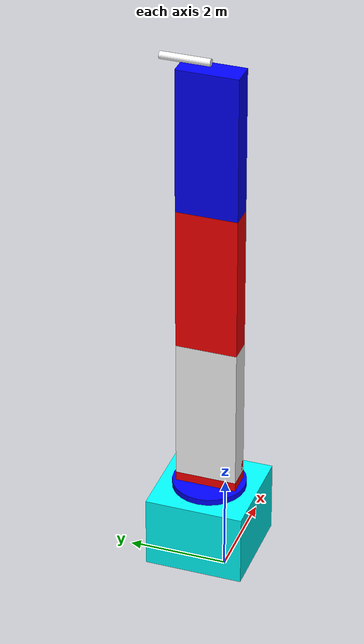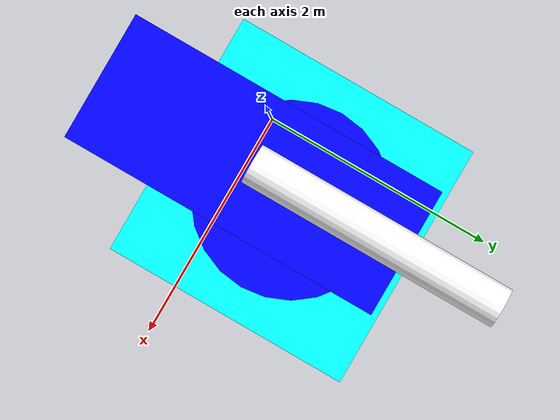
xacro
<?xml version="1.0"?>
<robot xmlns:xacro="http://www.ros.org/wiki/xacro" name="robot">

    <xacro:include filename="macros.xacro"/>

    <!-- Base link, true, non-relative 0,0,0 of world -->
    <link name="world"></link>

    <joint name="world-to-base" type="fixed">
        <!-- The base of the arm is at 0,0,0 -->
        <origin xyz="0.5 0.5 0" rpy="0 0 0"/>
        <!-- subordinate joing to the world -->
        <parent link="world"/>
        <!-- the 'child' link, or next in heirarchy -->
        <child link="base"/>
    </joint>

    <!-- the "Base" of the robotic arm -->
    <xacro:property name="base_x" value="2"/>
    <xacro:property name="base_y" value="2"/>
    <xacro:property name="base_z" value="1.5"/>
    <xacro:property name="base_dimensions" value="${base_x} ${base_y} ${base_z}"/>
    <xacro:property name="base_origin" value="0 0 0.75"/>
    <link name="base">
        <visual>
            <origin xyz="${base_origin}"/>
            <geometry>
                <box size="${base_dimensions}"/>
            </geometry>
            <material name="cyan"/>
        </visual>
        <collision>
            <origin xyz="${base_origin}"/>
            <geometry>
                <box size="${base_dimensions}"/>
            </geometry>
        </collision>
        <xacro:inertial_box mass="2" x="${base_x}" y="${base_y}"  z="${base_z}">
            <origin xyz="${base_origin}"/>
        </xacro:inertial_box>

    </link>

    <!-- TODO Should really come up with a better name for this part... -->
    <!-- Represents the 'circle' piece that sits above the base of the robot arm -->
    <xacro:property name="circle_height" value="0.125"/>
    <xacro:property name="circle_radius" value="0.75"/>
    <!-- TODO this should probably be different? not the cleanest way to do it -->
    <xacro:property name="circle_origin" value="0 0 0.0625"/>

    <link name="circle">
        <visual>
            <!-- start slightly offset, so link is at base of cylinder -->
            <origin xyz="${circle_origin}" rpy="0 0 0"/>
            <geometry>
                <cylinder radius="${circle_radius}" length="${circle_height}"/>
            </geometry>
            <material name="blue"/>
        </visual>
        <collision>
            <!-- start slightly offset, so link is at base of cylinder -->
            <origin xyz="${circle_origin}" rpy="0 0 0"/>
            <geometry>
                <cylinder radius="${circle_radius}" length="${circle_height}"/>
            </geometry>
        </collision>
        <xacro:inertial_cylinder mass="0.1" length="${circle_height}" radius="${circle_radius}">
            <origin xyz="${circle_origin}"/>
        </xacro:inertial_cylinder>
    </link>

    <joint name="circle-to-s0" type="fixed">
        <parent link="circle"/>
        <child link="s0"/>
        <origin xyz="0 0 0.0625"/>
    </joint>

    <!-- The first real "arm" servo, may want to be +1 instead but will have to update servo code?-->
    <xacro:microServo parent="base" child="circle" origin="0 0 1.5" axis="0 0 1"/>
    <xacro:microServo parent="s0" child="s1" origin="0 0 0.25" axis="0 -1 0"/>
    <xacro:microServo parent="s1" child="s2" origin="0 0 3" axis="0 -1 0"/>
    <xacro:microServo parent="s2" child="s3" origin="0 0 3" axis="0 -1 0"/>
    <xacro:microServo parent="s3" child="grip_stick" origin="0 0 3" axis="0 0 1"/>

    <!-- representation of base of the arm -->
    <!-- between the circle and first real arm segment s1 -->
    <xacro:property name="s0_origin" value="0 0 0.25"/>
    <xacro:property name="s0xLen" value="0.5"/>
    <xacro:property name="s0yLen" value="1.25"/>
    <xacro:property name="s0zLen" value="0.5"/>
    <link name="s0">
        <visual>
            <origin xyz="${s0_origin}"/>
            <geometry> <box size="${s0xLen} ${s0yLen} ${s0zLen}"/> </geometry>
            <material name="red"/>
        </visual>
        <collision>
            <origin xyz="${s0_origin}"/>
            <geometry> <box size="${s0xLen} ${s0yLen} ${s0zLen}"/> </geometry>
        </collision>
        <xacro:inertial_box mass="0.1" x="${s0xLen}" y="${s0yLen}" z="${s0zLen}">
            <origin xyz="${s0_origin}"/>
        </xacro:inertial_box>
    </link>

    <xacro:arm-segment number="1" origin="0 0 1.5" x="0.5" y="1.25" z="3" material="white"/>
    <xacro:arm-segment number="2" origin="0 0 1.5" x="0.5" y="1.25" z="3" material="red"/>
    <xacro:arm-segment number="3" origin="0 0 1.5" x="0.5" y="1.25" z="3" material="blue"/>

    <xacro:property name="grip_stick_height" value="1"/>
    <xacro:property name="grip_stick_radius" value="0.075"/>
    <xacro:property name="grip_stick_origin" value="0 0.5 0.125"/>
    <xacro:property name="grip_stick_rpy" value="1.572 0 0"/>

    <link name="grip_stick">
        <visual>
            <origin xyz="${grip_stick_origin}" rpy="${grip_stick_rpy}"/>  <!-- 'grip sticks' radius is offset -->
            <geometry>
                <cylinder length="${grip_stick_height}" radius="${grip_stick_radius}"/>
            </geometry>
            <material name="white"/>
        </visual>
        <collision>
            <origin xyz="${grip_stick_origin}" rpy="${grip_stick_rpy}"/>  <!-- 'grip sticks' radius is offset -->
            <geometry>
                <cylinder length="${grip_stick_height}" radius="${grip_stick_radius}"/>
            </geometry>
        </collision>
        <xacro:inertial_cylinder mass="0.25" length="${grip_stick_height}" radius="${grip_stick_radius}">
            <origin xyz="${grip_stick_origin}" rpy="${grip_stick_rpy}"/>  <!-- 'grip sticks' radius is offset -->
        </xacro:inertial_cylinder>

    </link>

    <!-- Link in gazebo file, which contains all of hte gazebo related things -->
    <xacro:include filename="gazebo.xacro"/>

</robot>

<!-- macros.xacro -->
<robot xmlns:xacro="http://www.ros.org/wiki/xacro">

    <material name="white">
        <color rgba="1 1 1 1"/>
    </material>

    <material name="blue">
        <color rgba="0 0 1 1"/>
    </material>

    <material name="red">
        <color rgba="1 0 0 1"/>
    </material>

    <material name="cyan">
        <color rgba="0 1 1 1"/>
    </material>

    <xacro:macro name="microServo" params="parent child origin axis">
        <joint name="${parent}_${child}_servo" type="revolute">
            <origin xyz="${origin}"/>
            <parent link="${parent}"/>
            <child link="${child}"/>
            <!-- axis of rotation, normalized -->
            <axis xyz="${axis}"/>
            <!-- limits of rotation (in radians) and movement -->
            <!-- TODO it might be nice to figure out how to 'macro' pi
            something like "${pi}" is possible but this is just a
            simple test for now... -->
            <limit lower="-1.570796" upper="1.570796" effort="100" velocity="100"/>
        </joint>

    </xacro:macro>

    <xacro:macro name="arm-segment" params="number origin x y z material">
        <link name="s${number}">
            <visual>
                <origin xyz="${origin}"/>
                <geometry> <box size="${x} ${y} ${z}"/> </geometry>
                <material name="${material}"/>
            </visual>
            <collision>
                <origin xyz="${origin}"/>
                <geometry> <box size="${x} ${y} ${z}"/> </geometry>
            </collision>
            <xacro:inertial_box mass="1" x="${x}" y="${y}" z="${z}">
                <origin xyz="${origin}"/>
            </xacro:inertial_box>
        </link>
    </xacro:macro>

    <xacro:macro name="inertial_box" params="mass x y z *origin">
        <inertial>
            <xacro:insert_block name="origin"/>
            <mass value="${mass}" />
            <inertia ixx="${(1/12) * mass * (y*y+z*z)}" ixy="0.0" ixz="0.0"
                    iyy="${(1/12) * mass * (x*x+z*z)}" iyz="0.0"
                    izz="${(1/12) * mass * (x*x+y*y)}" />
        </inertial>
    </xacro:macro>

    <xacro:macro name="inertial_cylinder" params="mass length radius *origin">
        <inertial>
            <xacro:insert_block name="origin"/>
            <mass value="${mass}" />
            <inertia ixx="${(1/12) * mass * (3*radius*radius + length*length)}" ixy="0.0" ixz="0.0"
                    iyy="${(1/12) * mass * (3*radius*radius + length*length)}" iyz="0.0"
                    izz="${(1/2) * mass * (radius*radius)}" />
        </inertial>
    </xacro:macro>

</robot>
